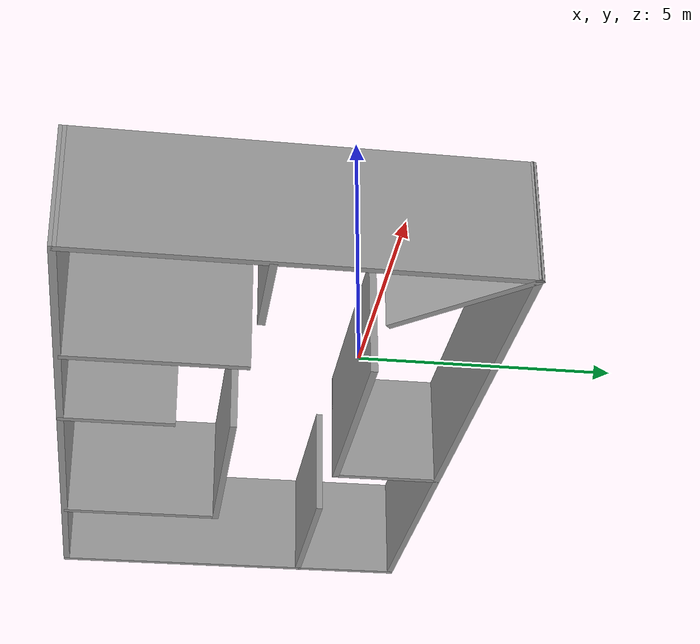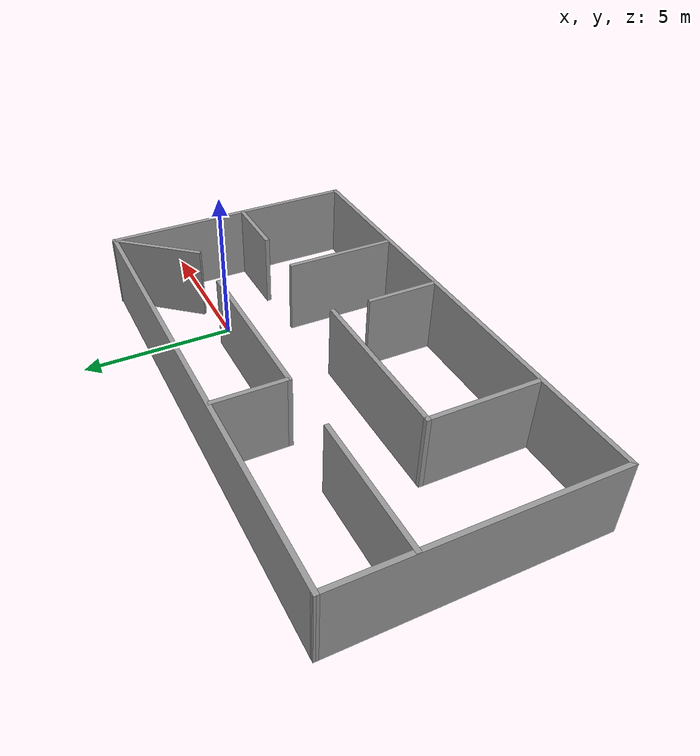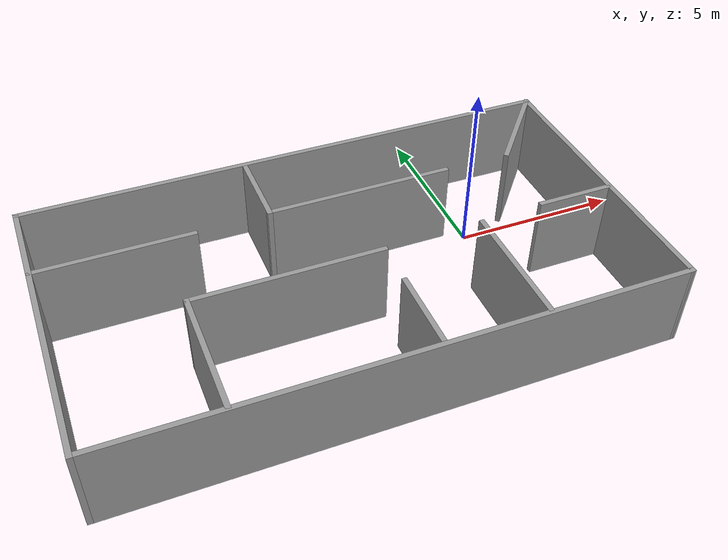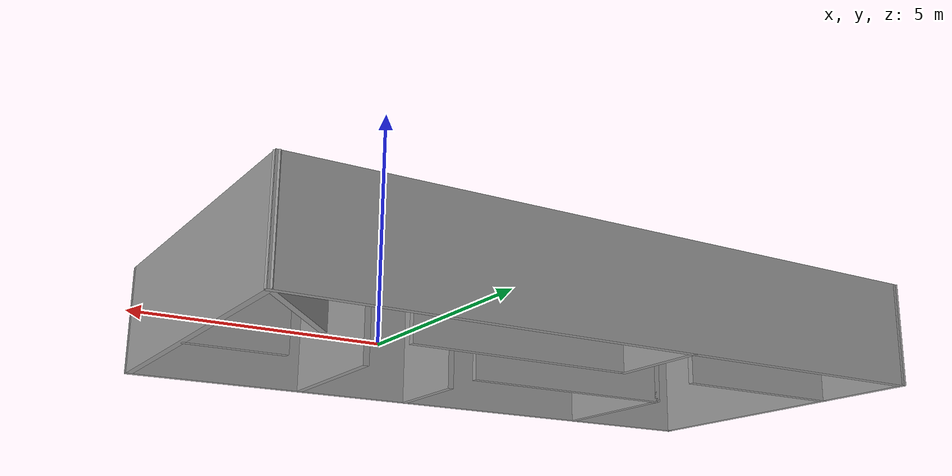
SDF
<?xml version='1.0'?>
<sdf version='1.7'>
  <model name='maze2'>
    <pose>-4.54127 -1.52485 0 0 -0 0</pose>
    <link name='Wall_1'>
      <collision name='Wall_1_Collision'>
        <geometry>
          <box>
            <size>15.9657 0.15 2.5</size>
          </box>
        </geometry>
        <pose>0 0 1.25 0 -0 0</pose>
      </collision>
      <visual name='Wall_1_Visual'>
        <pose>0 0 1.25 0 -0 0</pose>
        <geometry>
          <box>
            <size>15.9657 0.15 2.5</size>
          </box>
        </geometry>
        <material>
          <script>
            <uri>file://media/materials/scripts/gazebo.material</uri>
            <name>Gazebo/Grey</name>
          </script>
          <ambient>1 1 1 1</ambient>
        </material>
        <meta>
          <layer>0</layer>
        </meta>
      </visual>
      <pose>-0.017238 4.26549 0 0 -0 -0.004363</pose>
    </link>
    <link name='Wall_10'>
      <collision name='Wall_10_Collision'>
        <geometry>
          <box>
            <size>3.75 0.15 2.5</size>
          </box>
        </geometry>
        <pose>0 0 1.25 0 -0 0</pose>
      </collision>
      <visual name='Wall_10_Visual'>
        <pose>0 0 1.25 0 -0 0</pose>
        <geometry>
          <box>
            <size>3.75 0.15 2.5</size>
          </box>
        </geometry>
        <material>
          <script>
            <uri>file://media/materials/scripts/gazebo.material</uri>
            <name>Gazebo/Grey</name>
          </script>
          <ambient>1 1 1 1</ambient>
        </material>
        <meta>
          <layer>0</layer>
        </meta>
      </visual>
      <pose>-4.42343 -2.43874 0 0 -0 -1.5708</pose>
    </link>
    <link name='Wall_13'>
      <collision name='Wall_13_Collision'>
        <geometry>
          <box>
            <size>5.5 0.15 2.5</size>
          </box>
        </geometry>
        <pose>0 0 1.25 0 -0 0</pose>
      </collision>
      <visual name='Wall_13_Visual'>
        <pose>0 0 1.25 0 -0 0</pose>
        <geometry>
          <box>
            <size>5.5 0.15 2.5</size>
          </box>
        </geometry>
        <material>
          <script>
            <uri>file://media/materials/scripts/gazebo.material</uri>
            <name>Gazebo/Grey</name>
          </script>
          <ambient>1 1 1 1</ambient>
        </material>
        <meta>
          <layer>0</layer>
        </meta>
      </visual>
      <pose>-1.74843 -0.638741 0 0 -0 0</pose>
    </link>
    <link name='Wall_15'>
      <collision name='Wall_15_Collision'>
        <geometry>
          <box>
            <size>2.5 0.15 2.5</size>
          </box>
        </geometry>
        <pose>0 0 1.25 0 -0 0</pose>
      </collision>
      <visual name='Wall_15_Visual'>
        <pose>0 0 1.25 0 -0 0</pose>
        <geometry>
          <box>
            <size>2.5 0.15 2.5</size>
          </box>
        </geometry>
        <material>
          <script>
            <uri>file://media/materials/scripts/gazebo.material</uri>
            <name>Gazebo/Grey</name>
          </script>
          <ambient>1 1 1 1</ambient>
        </material>
        <meta>
          <layer>0</layer>
        </meta>
      </visual>
      <pose>0.924073 -3.12074 0 0 -0 1.5708</pose>
    </link>
    <link name='Wall_17'>
      <collision name='Wall_17_Collision'>
        <geometry>
          <box>
            <size>4.5 0.15 2.5</size>
          </box>
        </geometry>
        <pose>0 0 1.25 0 -0 0</pose>
      </collision>
      <visual name='Wall_17_Visual'>
        <pose>0 0 1.25 0 -0 0</pose>
        <geometry>
          <box>
            <size>4.5 0.15 2.5</size>
          </box>
        </geometry>
        <material>
          <script>
            <uri>file://media/materials/scripts/gazebo.material</uri>
            <name>Gazebo/Grey</name>
          </script>
          <ambient>1 1 1 1</ambient>
        </material>
        <meta>
          <layer>0</layer>
        </meta>
      </visual>
      <pose>-5.73293 1.81076 0 0 -0 0</pose>
    </link>
    <link name='Wall_19'>
      <collision name='Wall_19_Collision'>
        <geometry>
          <box>
            <size>5.5 0.15 2.5</size>
          </box>
        </geometry>
        <pose>0 0 1.25 0 -0 0</pose>
      </collision>
      <visual name='Wall_19_Visual'>
        <pose>0 0 1.25 0 -0 0</pose>
        <geometry>
          <box>
            <size>5.5 0.15 2.5</size>
          </box>
        </geometry>
        <material>
          <script>
            <uri>file://media/materials/scripts/gazebo.material</uri>
            <name>Gazebo/Grey</name>
          </script>
          <ambient>1 1 1 1</ambient>
        </material>
        <meta>
          <layer>0</layer>
        </meta>
      </visual>
      <pose>1.25307 1.91426 0 0 -0 0</pose>
    </link>
    <link name='Wall_23'>
      <collision name='Wall_23_Collision'>
        <geometry>
          <box>
            <size>3.18715 0.15 2.5</size>
          </box>
        </geometry>
        <pose>0 0 1.25 0 -0 0</pose>
      </collision>
      <visual name='Wall_23_Visual'>
        <pose>0 0 1.25 0 -0 0</pose>
        <geometry>
          <box>
            <size>3.18715 0.15 2.5</size>
          </box>
        </geometry>
        <material>
          <script>
            <uri>file://media/materials/scripts/gazebo.material</uri>
            <name>Gazebo/Grey</name>
          </script>
          <ambient>1 1 1 1</ambient>
        </material>
        <meta>
          <layer>0</layer>
        </meta>
      </visual>
      <pose>6.90854 3.07262 0 0 -0 0.867627</pose>
    </link>
    <link name='Wall_25'>
      <collision name='Wall_25_Collision'>
        <geometry>
          <box>
            <size>2.5 0.15 2.5</size>
          </box>
        </geometry>
        <pose>0 0 1.25 0 -0 0</pose>
      </collision>
      <visual name='Wall_25_Visual'>
        <pose>0 0 1.25 0 -0 0</pose>
        <geometry>
          <box>
            <size>2.5 0.15 2.5</size>
          </box>
        </geometry>
        <material>
          <script>
            <uri>file://media/materials/scripts/gazebo.material</uri>
            <name>Gazebo/Grey</name>
          </script>
          <ambient>1 1 1 1</ambient>
        </material>
        <meta>
          <layer>0</layer>
        </meta>
      </visual>
      <pose>-1.42193 3.08926 0 0 -0 1.5708</pose>
    </link>
    <link name='Wall_27'>
      <collision name='Wall_27_Collision'>
        <geometry>
          <box>
            <size>3.75 0.15 2.5</size>
          </box>
        </geometry>
        <pose>0 0 1.25 0 -0 0</pose>
      </collision>
      <visual name='Wall_27_Visual'>
        <pose>0 0 1.25 0 -0 0</pose>
        <geometry>
          <box>
            <size>3.75 0.15 2.5</size>
          </box>
        </geometry>
        <material>
          <script>
            <uri>file://media/materials/scripts/gazebo.material</uri>
            <name>Gazebo/Grey</name>
          </script>
          <ambient>1 1 1 1</ambient>
        </material>
        <meta>
          <layer>0</layer>
        </meta>
      </visual>
      <pose>3.82207 -2.40424 0 0 -0 -1.5708</pose>
    </link>
    <link name='Wall_30'>
      <collision name='Wall_30_Collision'>
        <geometry>
          <box>
            <size>2.25 0.15 2.5</size>
          </box>
        </geometry>
        <pose>0 0 1.25 0 -0 0</pose>
      </collision>
      <visual name='Wall_30_Visual'>
        <pose>0 0 1.25 0 -0 0</pose>
        <geometry>
          <box>
            <size>2.25 0.15 2.5</size>
          </box>
        </geometry>
        <material>
          <script>
            <uri>file://media/materials/scripts/gazebo.material</uri>
            <name>Gazebo/Grey</name>
          </script>
          <ambient>1 1 1 1</ambient>
        </material>
        <meta>
          <layer>0</layer>
        </meta>
      </visual>
      <pose>6.77407 -0.500741 0 0 -0 3.14159</pose>
    </link>
    <link name='Wall_5'>
      <collision name='Wall_5_Collision'>
        <geometry>
          <box>
            <size>8.75 0.15 2.5</size>
          </box>
        </geometry>
        <pose>0 0 1.25 0 -0 0</pose>
      </collision>
      <visual name='Wall_5_Visual'>
        <pose>0 0 1.25 0 -0 0</pose>
        <geometry>
          <box>
            <size>8.75 0.15 2.5</size>
          </box>
        </geometry>
        <material>
          <script>
            <uri>file://media/materials/scripts/gazebo.material</uri>
            <name>Gazebo/Grey</name>
          </script>
          <ambient>1 1 1 1</ambient>
        </material>
        <meta>
          <layer>0</layer>
        </meta>
      </visual>
      <pose>-7.92499 -1.2e-05 0 0 -0 -1.5708</pose>
    </link>
    <link name='Wall_7'>
      <collision name='Wall_7_Collision'>
        <geometry>
          <box>
            <size>16 0.15 2.5</size>
          </box>
        </geometry>
        <pose>0 0 1.25 0 -0 0</pose>
      </collision>
      <visual name='Wall_7_Visual'>
        <pose>0 0 1.25 0 -0 0</pose>
        <geometry>
          <box>
            <size>16 0.15 2.5</size>
          </box>
        </geometry>
        <material>
          <script>
            <uri>file://media/materials/scripts/gazebo.material</uri>
            <name>Gazebo/Grey</name>
          </script>
          <ambient>1 1 1 1</ambient>
        </material>
        <meta>
          <layer>0</layer>
        </meta>
      </visual>
      <pose>1.2e-05 -4.30001 0 0 -0 0</pose>
    </link>
    <link name='Wall_8'>
      <collision name='Wall_8_Collision'>
        <geometry>
          <box>
            <size>8.68107 0.15 2.5</size>
          </box>
        </geometry>
        <pose>0 0 1.25 0 -0 0</pose>
      </collision>
      <visual name='Wall_8_Visual'>
        <pose>0 0 1.25 0 -0 0</pose>
        <geometry>
          <box>
            <size>8.68107 0.15 2.5</size>
          </box>
        </geometry>
        <material>
          <script>
            <uri>file://media/materials/scripts/gazebo.material</uri>
            <name>Gazebo/Grey</name>
          </script>
          <ambient>1 1 1 1</ambient>
        </material>
        <meta>
          <layer>0</layer>
        </meta>
      </visual>
      <pose>7.90776 -0.034512 0 0 -0 1.57484</pose>
    </link>
    <static>1</static>
  </model>
</sdf>
